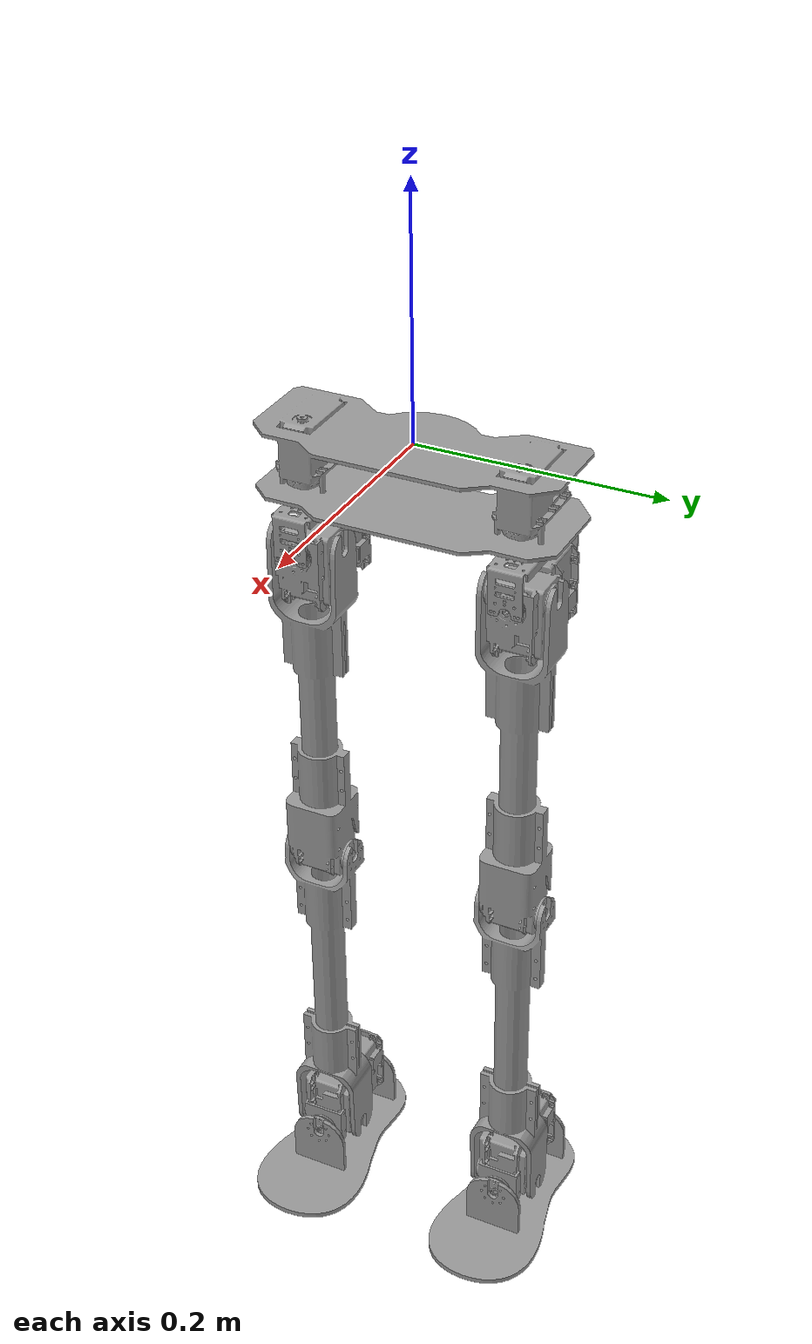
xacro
<?xml version="1.0"?>
<robot name="uthai"
    xmlns:xacro="http://www.ros.org/wiki/xacro">
    <xacro:property name="pi" value="3.141592654"/>
    <!-- Import xacro file -->
    <xacro:include filename="$(find uthai_description)/urdf/materials.xacro" />
    <xacro:include filename="$(find uthai_description)/urdf/uthai.visuals.xacro" />
    <xacro:include filename="$(find uthai_description)/urdf/uthai.inertia.xacro" />
    <xacro:include filename="$(find uthai_description)/urdf/uthai.transmissions.xacro" />
    <xacro:include filename="$(find uthai_description)/urdf/uthai.right_leg.xacro" />
    <xacro:include filename="$(find uthai_description)/urdf/uthai.left_leg.xacro" />
    <xacro:include filename="$(find uthai_description)/urdf/uthai.gazebo.xacro" />
    <!-- Used for fixing robot -->
    <link name="base_link"></link>
    <joint name="base_fixed" type="fixed">
        <origin xyz="0 0 0" rpy="0 0 0"/>
        <parent link="base_link"/>
        <child link="base_footprint"/>
    </joint>
    <!-- base_link -->
    <link name="base_footprint">
        <visual>
            <xacro:insert_mesh_base_link />
        </visual>
        <collision>
            <xacro:insert_mesh_base_link />
        </collision>
        <inertial>
            <xacro:insert_inertia_base_link />
        </inertial>
    </link>
    <!-- imu joint -->
    <joint name="imu_fixed" type="fixed">
        <origin xyz="0.0 0 0.45" rpy="0 0 0"/>
        <parent link="base_footprint"/>
        <child link="imu_link"/>
    </joint>
    <link name="imu_link"></link>
    <!-- leg link -->
    <xacro:uthai_right_leg parent="base_footprint" dxl_effort="10000" dxl_speed="3"/>
    <xacro:uthai_left_leg parent="base_footprint" dxl_effort="10000" dxl_speed="3"/>
</robot>

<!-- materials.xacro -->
<robot>
    <material name="black">
        <color rgba="0.0 0.0 0.0 1.0"/>
    </material>
    <material name="blue">
        <color rgba="0.0 0.0 0.8 1.0"/>
    </material>
    <material name="green">
        <color rgba="0.0 0.8 0.0 1.0"/>
    </material>
    <material name="grey">
        <color rgba="0.6 0.6 0.6 1.0"/>
    </material>
    <material name="orange">
        <color rgba="${255/255} ${108/255} ${10/255} 1.0"/>
    </material>
    <material name="brown">
        <color rgba="${222/255} ${207/255} ${195/255} 1.0"/>
    </material>
    <material name="red">
        <color rgba="0.8 0.0 0.0 1.0"/>
    </material>
    <material name="white">
        <color rgba="1.0 1.0 1.0 1.0"/>
    </material>
</robot>

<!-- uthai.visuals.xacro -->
<robot
    xmlns:xacro="http://www.ros.org/wiki/xacro">
    <!-- body link -->
    <xacro:macro name="insert_mesh_base_link">
        <origin xyz="0 0 0" rpy="0 0 0" />
        <geometry>
            <mesh filename="package://uthai_description/meshes/base.STL" scale="1 1 1" />
        </geometry>
        <material name="grey"/>
    </xacro:macro>
    <!-- right hip yaw link -->
    <xacro:macro name="insert_mesh_r_hip_yaw_link">
        <origin xyz="0 0 0" rpy="0 0 0" />
        <geometry>
            <mesh filename="package://uthai_description/meshes/r_hip_yaw.STL" scale="1 1 1" />
        </geometry>
        <material name="grey"/>
    </xacro:macro>
    <!-- right hip roll link -->
    <xacro:macro name="insert_mesh_r_hip_roll_link">
        <origin xyz="0 0 0" rpy="0 0 0" />
        <geometry>
            <mesh filename="package://uthai_description/meshes/r_hip_roll.STL" scale="1 1 1" />
        </geometry>
        <material name="grey"/>
    </xacro:macro>
    <!-- right hip pitch link -->
    <xacro:macro name="insert_mesh_r_hip_pitch_link">
        <origin xyz="0 0 0" rpy="0 0 0" />
        <geometry>
            <mesh filename="package://uthai_description/meshes/r_hip_pitch.STL" scale="1 1 1" />
        </geometry>
        <material name="grey"/>
    </xacro:macro>
    <!-- right knee link -->
    <xacro:macro name="insert_mesh_r_knee_pitch_link">
        <origin xyz="0 0 0" rpy="0 0 0" />
        <geometry>
            <mesh filename="package://uthai_description/meshes/r_knee_pitch.STL" scale="1 1 1" />
        </geometry>
        <material name="grey"/>
    </xacro:macro>
    <!-- right ankle pitch link -->
    <xacro:macro name="insert_mesh_r_ankle_pitch_link">
        <origin xyz="0 0 0" rpy="0 0 0" />
        <geometry>
            <mesh filename="package://uthai_description/meshes/r_ankle_pitch.STL" scale="1 1 1" />
        </geometry>
        <material name="grey"/>
    </xacro:macro>
    <!-- right ankle roll link -->
    <xacro:macro name="insert_mesh_r_ankle_roll_link">
        <origin xyz="0 0 0" rpy="0 0 0" />
        <geometry>
            <mesh filename="package://uthai_description/meshes/r_ankle_roll.STL" scale="1 1 1" />
        </geometry>
        <material name="grey"/>
    </xacro:macro>
    <!-- left hip yaw link -->
    <xacro:macro name="insert_mesh_l_hip_yaw_link">
        <origin xyz="0 0 0" rpy="0 0 0" />
        <geometry>
            <mesh filename="package://uthai_description/meshes/l_hip_yaw.STL" scale="1 1 1" />
        </geometry>
        <material name="grey"/>
    </xacro:macro>
    <!-- left hip roll link -->
    <xacro:macro name="insert_mesh_l_hip_roll_link">
        <origin xyz="0 0 0" rpy="0 0 0" />
        <geometry>
            <mesh filename="package://uthai_description/meshes/l_hip_roll.STL" scale="1 1 1" />
        </geometry>
        <material name="grey"/>
    </xacro:macro>
    <!-- left hip pitch link -->
    <xacro:macro name="insert_mesh_l_hip_pitch_link">
        <origin xyz="0 0 0" rpy="0 0 0" />
        <geometry>
            <mesh filename="package://uthai_description/meshes/l_hip_pitch.STL" scale="1 1 1" />
        </geometry>
        <material name="grey"/>
    </xacro:macro>
    <!-- left knee pitch link -->
    <xacro:macro name="insert_mesh_l_knee_pitch_link">
        <origin xyz="0 0 0" rpy="0 0 0" />
        <geometry>
            <mesh filename="package://uthai_description/meshes/l_knee_pitch.STL" scale="1 1 1" />
        </geometry>
        <material name="grey"/>
    </xacro:macro>
    <!-- left ankle pitch link -->
    <xacro:macro name="insert_mesh_l_ankle_pitch_link">
        <origin xyz="0 0 0" rpy="0 0 0" />
        <geometry>
            <mesh filename="package://uthai_description/meshes/l_ankle_pitch.STL" scale="1 1 1" />
        </geometry>
        <material name="grey"/>
    </xacro:macro>
    <!-- left ankle roll link -->
    <xacro:macro name="insert_mesh_l_ankle_roll_link">
        <origin xyz="0 0 0" rpy="0 0 0" />
        <geometry>
            <mesh filename="package://uthai_description/meshes/l_ankle_roll.STL" scale="1 1 1" />
        </geometry>
        <material name="grey"/>
    </xacro:macro>
</robot>

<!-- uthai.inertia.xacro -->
<robot
    xmlns:xacro="http://www.ros.org/wiki/xacro">
    <!-- body link -->
    <xacro:macro name="insert_inertia_base_link">
        <origin xyz="-0.00856879 0.00000000 -0.02356598"/>
        <mass value="0.664564"/>
        <inertia ixx="0.00504324" ixy="-0.00000002" ixz="-0.00000358" iyy="0.00051942" iyz="0.00000000" izz="0.00510248" />
    </xacro:macro>
    <!-- right hip yaw link -->
    <xacro:macro name="insert_inertia_r_hip_yaw_link">
        <origin xyz="0.00000000 -0.01999 -0.00735017" />
        <mass value="0.090718"/>
        <inertia ixx="0.00014114" ixy="0.00000000" ixz="0.00000000" iyy="0.00002016" iyz="0.00000000" izz="0.00014272" />
    </xacro:macro>
    <!-- right hip roll link -->
    <xacro:macro name="insert_inertia_r_hip_roll_link">
        <origin xyz="-0.00005878 -0.01433229 -0.01958936" />
        <mass value="0.342"/>
        <inertia ixx="0.00033963" ixy="0.00000054" ixz="-0.00000042" iyy="0.00029059" iyz="0.00001145" izz="0.00015024" />
    </xacro:macro>
    <!-- right hip pitch link -->
    <xacro:macro name="insert_inertia_r_hip_pitch_link">
        <origin xyz="0.21422113 0.0 0.0" />
        <mass value="0.33732478"/>
        <inertia ixx="0.00012533" ixy="0.00000000" ixz="0.00000079" iyy="0.00295762" iyz="0.00000000" izz="0.00291401" />
    </xacro:macro>
    <!-- right knee link -->
    <xacro:macro name="insert_inertia_r_knee_pitch_link">
        <origin xyz="0.16288151 0.00000000 0.00000000" />
        <mass value="0.15100000"/>
        <inertia ixx="0.0000634" ixy="0.0" ixz="0.0" iyy="0.00139615" iyz="0.0" izz="0.00136734" />
    </xacro:macro>
    <!-- right ankle pitch link -->
    <xacro:macro name="insert_inertia_r_ankle_pitch_link">
        <origin xyz="-0.01433229 0.01958936 0.00005878" />
        <mass value="0.342"/>
        <inertia ixx="0.00029059" ixy="-0.00001145" ixz="-0.00000054" iyy="0.00015024" iyz="-0.00000042" izz="0.00033963" />
    </xacro:macro>
    <!-- right ankle roll link -->
    <xacro:macro name="insert_inertia_r_ankle_roll_link">
        <origin xyz="0.03627101 -0.00000116 0.00053793" />
        <mass value="0.155"/>
        <inertia ixx="0.00052206" ixy="0" ixz="0.00001" iyy="0.00047025" iyz="0" izz="0.00009087" />
    </xacro:macro>
    <!-- left hip yaw link -->
    <xacro:macro name="insert_inertia_l_hip_yaw_link">
        <origin xyz="0 0.01999 -0.00735017" />
        <mass value="0.090718"/>
        <inertia ixx="0.00014114" ixy="0.0" ixz="0.0" iyy="0.00002016" iyz="0.0" izz="0.00014272" />
    </xacro:macro>
    <!-- left hip roll link -->
    <xacro:macro name="insert_inertia_l_hip_roll_link">
        <origin xyz="-0.00005878 -0.01433229 -0.01958936" />
        <mass value="0.342"/>
        <inertia ixx="0.00033963" ixy="0.00000054" ixz="-0.00000042" iyy="0.00029059" iyz="0.00001145" izz="0.00015024" />
    </xacro:macro>
    <!-- left hip pitch link -->
    <xacro:macro name="insert_inertia_l_hip_pitch_link">
        <origin xyz="0.21422113 0.00000000 0.00000000" />
        <mass value="0.33732478"/>
        <inertia ixx="0.00012533" ixy="0.00000000" ixz="0.00000079" iyy="0.00295762" iyz="0.00000000" izz="0.00291401" />
    </xacro:macro>
    <!-- left knee link -->
    <xacro:macro name="insert_inertia_l_knee_pitch_link">
        <origin xyz="0.16288151 0.00000000 0.00000000" />
        <mass value="0.15100000"/>
        <inertia ixx="0.0000634" ixy="0.0" ixz="0.0" iyy="0.00139615" iyz="0.0" izz="0.00136734" />
    </xacro:macro>
    <!-- left ankle pitch link -->
    <xacro:macro name="insert_inertia_l_ankle_pitch_link">
        <origin xyz="-0.01433229 0.01958936 0.00005878" />
        <mass value="0.34200000"/>
        <inertia ixx="0.00029059" ixy="-0.00001145" ixz="-0.00000054" iyy="0.00015024" iyz="-0.00000042" izz="0.00033963" />
    </xacro:macro>
    <!-- left ankle roll link -->
    <xacro:macro name="insert_inertia_l_ankle_roll_link">
        <origin xyz="0.03627101 -0.00000116 0.00053793" />
        <mass value="0.155"/>
        <inertia ixx="0.00052206" ixy="0.000000" ixz="0.00001" iyy="0.00047025" iyz="0" izz="0.00009087" />
    </xacro:macro>
</robot>

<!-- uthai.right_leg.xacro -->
<robot
    xmlns:xacro="http://www.ros.org/wiki/xacro">
    <!-- right leg -->
    <xacro:macro name="uthai_right_leg" params="parent dxl_effort dxl_speed">
        <!-- right hip yaw joint -->
        <joint name="r_hip_yaw_joint" type="revolute">
            <axis xyz="0 0 1" />
            <origin xyz="0.0 -0.09 -0.068" rpy="0 0 ${-pi/2}"/>
            <parent link="${parent}"/>
            <child link="r_hip_yaw_link"/>
            <limit effort="${dxl_effort}" lower="${-pi*0.9}" upper="${pi*0.9}" velocity="${dxl_speed}"/>
            <dynamics damping="0.1" friction="0.0"/>
        </joint>
        <xacro:insert_transmission name="r_hip_yaw_joint"/>
        <!-- right hip yaw link -->
        <link name="r_hip_yaw_link">
            <visual>
                <xacro:insert_mesh_r_hip_yaw_link />
            </visual>
            <collision>
                <xacro:insert_mesh_r_hip_yaw_link />
            </collision>
            <inertial>
                <xacro:insert_inertia_r_hip_yaw_link />
            </inertial>
        </link>
        <!-- right hip roll joint-->
        <joint name="r_hip_roll_joint" type="revolute">
            <axis xyz="0 0 1" />
            <origin xyz="0 0 -0.036" rpy="${pi/2} 0 ${pi}"/>
            <parent link="r_hip_yaw_link"/>
            <child link="r_hip_roll_link"/>
            <limit effort="${dxl_effort}" lower="${-pi*0.9}" upper="${pi*0.9}" velocity="${dxl_speed}"/>
            <dynamics damping="0.1" friction="0.0"/>
        </joint>
        <xacro:insert_transmission name="r_hip_roll_joint"/>
        <!-- right hip roll link -->
        <link name="r_hip_roll_link">
            <visual>
                <xacro:insert_mesh_r_hip_roll_link />
            </visual>
            <collision>
                <xacro:insert_mesh_r_hip_roll_link />
            </collision>
            <inertial>
                <xacro:insert_inertia_r_hip_roll_link />
            </inertial>
        </link>
        <!-- right hip pitch joint -->
        <joint name="r_hip_pitch_joint" type="revolute">
            <axis xyz="0 0 1" />
            <origin xyz="0 0 0" rpy="${-pi/2} 0 ${-pi/2}"/>
            <parent link="r_hip_roll_link"/>
            <child link="r_hip_pitch_link"/>
            <limit effort="${dxl_effort}" lower="${-pi*0.9}" upper="${pi*0.9}" velocity="${dxl_speed}"/>
            <dynamics damping="0.1" friction="0.0"/>
        </joint>
        <xacro:insert_transmission name="r_hip_pitch_joint"/>
        <!-- right hip pitch link -->
        <link name="r_hip_pitch_link">
            <visual>
                <xacro:insert_mesh_r_hip_pitch_link />
            </visual>
            <collision>
                <xacro:insert_mesh_r_hip_pitch_link />
            </collision>
            <inertial>
                <xacro:insert_inertia_r_hip_pitch_link />
            </inertial>
        </link>
        <!-- right knee pitch joint -->
        <joint name="r_knee_pitch_joint" type="revolute">
            <axis xyz="0 0 1" />
            <origin xyz="0.3 0 0" rpy="0 0 0"/>
            <parent link="r_hip_pitch_link"/>
            <child link="r_knee_pitch_link"/>
            <limit effort="${dxl_effort}" lower="${-pi*0.9}" upper="${pi*0.9}" velocity="${dxl_speed}"/>
            <dynamics damping="0.1" friction="0.0"/>
        </joint>
        <xacro:insert_transmission name="r_knee_pitch_joint"/>
        <!-- right knee pitch link -->
        <link name="r_knee_pitch_link">
            <visual>
                <xacro:insert_mesh_r_knee_pitch_link />
            </visual>
            <collision>
                <xacro:insert_mesh_r_knee_pitch_link />
            </collision>
            <inertial>
                <xacro:insert_inertia_r_knee_pitch_link />
            </inertial>
        </link>
        <!-- right ankle pitch joint -->
        <joint name="r_ankle_pitch_joint" type="revolute">
            <axis xyz="0 0 1" />
            <origin xyz="0.315 0 0" rpy="0 0 0"/>
            <parent link="r_knee_pitch_link"/>
            <child link="r_ankle_pitch_link"/>
            <limit effort="${dxl_effort}" lower="${-pi*0.9}" upper="${pi*0.9}" velocity="${dxl_speed}"/>
            <dynamics damping="0.1" friction="0.0"/>
        </joint>
        <xacro:insert_transmission name="r_ankle_pitch_joint"/>
        <!-- right ankle pitch link -->
        <link name="r_ankle_pitch_link">
            <visual>
                <xacro:insert_mesh_r_ankle_pitch_link />
            </visual>
            <collision>
                <xacro:insert_mesh_r_ankle_pitch_link />
            </collision>
            <inertial>
                <xacro:insert_inertia_r_ankle_pitch_link />
            </inertial>
        </link>
        <!-- right ankle roll pitch -->
        <joint name="r_ankle_roll_joint" type="revolute">
            <axis xyz="0 0 1" />
            <origin xyz="0 0 0" rpy="${pi/2} 0 0"/>
            <parent link="r_ankle_pitch_link"/>
            <child link="r_ankle_roll_link"/>
            <limit effort="${dxl_effort}" lower="${-pi*0.9}" upper="${pi*0.9}" velocity="${dxl_speed}"/>
            <dynamics damping="0.1" friction="0.0"/>
        </joint>
        <xacro:insert_transmission name="r_ankle_roll_joint"/>
        <!-- right ankle roll link -->
        <link name="r_ankle_roll_link">
            <visual>
                <xacro:insert_mesh_r_ankle_roll_link />
            </visual>
            <collision>
                <xacro:insert_mesh_r_ankle_roll_link />
            </collision>
            <inertial>
                <xacro:insert_inertia_r_ankle_roll_link />
            </inertial>
        </link>
        <!-- right ft fixed joint -->
        <joint name="r_ft_fixed" type="fixed">
            <origin xyz="0.045 0.0 0.0" rpy="0 ${-pi/2} 0"/>
            <parent link="r_ankle_roll_link"/>
            <child link="r_foot_ft_link"/>
        </joint>
        <!-- right foot ft link -->
        <link name="r_foot_ft_link"></link>
    </xacro:macro>
</robot>

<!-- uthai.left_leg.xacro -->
<robot
    xmlns:xacro="http://www.ros.org/wiki/xacro">
    <!-- left leg -->
    <xacro:macro name="uthai_left_leg" params="parent dxl_effort dxl_speed">
        <!-- left hip yaw joint -->
        <joint name="l_hip_yaw_joint" type="revolute">
            <axis xyz="0 0 1" />
            <origin xyz="0.0 0.09 -0.068" rpy="0 0 ${pi/2}"/>
            <parent link="${parent}"/>
            <child link="l_hip_yaw_link"/>
            <limit effort="${dxl_effort}" lower="${-pi*0.9}" upper="${pi*0.9}" velocity="${dxl_speed}"/>
            <dynamics damping="0.1" friction="0.0"/>
        </joint>
        <xacro:insert_transmission name="l_hip_yaw_joint"/>
        <!-- left hip yaw link -->
        <link name="l_hip_yaw_link">
            <visual>
                <xacro:insert_mesh_l_hip_yaw_link />
            </visual>
            <collision>
                <xacro:insert_mesh_l_hip_yaw_link />
            </collision>
            <inertial>
                <xacro:insert_inertia_l_hip_yaw_link />
            </inertial>
        </link>
        <!-- left hip roll joint-->
        <joint name="l_hip_roll_joint" type="revolute">
            <axis xyz="0 0 1" />
            <origin xyz="0 0 -0.036" rpy="${pi/2} 0 0"/>
            <parent link="l_hip_yaw_link"/>
            <child link="l_hip_roll_link"/>
            <limit effort="${dxl_effort}" lower="${-pi*0.9}" upper="${pi*0.9}" velocity="${dxl_speed}"/>
            <dynamics damping="0.1" friction="0.0"/>
        </joint>
        <xacro:insert_transmission name="l_hip_roll_joint"/>
        <!-- left hip roll link -->
        <link name="l_hip_roll_link">
            <visual>
                <xacro:insert_mesh_l_hip_roll_link />
            </visual>
            <collision>
                <xacro:insert_mesh_l_hip_roll_link />
            </collision>
            <inertial>
                <xacro:insert_inertia_l_hip_roll_link />
            </inertial>
        </link>
        <!-- left hip pitch joint -->
        <joint name="l_hip_pitch_joint" type="revolute">
            <axis xyz="0 0 1" />
            <origin xyz="0 0 0" rpy="${-pi/2} 0 ${-pi/2}"/>
            <parent link="l_hip_roll_link"/>
            <child link="l_hip_pitch_link"/>
            <limit effort="${dxl_effort}" lower="${-pi*0.9}" upper="${pi*0.9}" velocity="${dxl_speed}"/>
            <dynamics damping="0.1" friction="0.0"/>
        </joint>
        <xacro:insert_transmission name="l_hip_pitch_joint"/>
        <!-- left hip pitch link -->
        <link name="l_hip_pitch_link">
            <visual>
                <xacro:insert_mesh_l_hip_pitch_link />
            </visual>
            <collision>
                <xacro:insert_mesh_l_hip_pitch_link />
            </collision>
            <inertial>
                <xacro:insert_inertia_l_hip_pitch_link />
            </inertial>
        </link>
        <!-- left knee pitch joint -->
        <joint name="l_knee_pitch_joint" type="revolute">
            <axis xyz="0 0 1" />
            <origin xyz="0.3 0 0" rpy="0 0 0"/>
            <parent link="l_hip_pitch_link"/>
            <child link="l_knee_pitch_link"/>
            <limit effort="${dxl_effort}" lower="${-pi*0.9}" upper="${pi*0.9}" velocity="${dxl_speed}"/>
            <dynamics damping="0.1" friction="0.0"/>
        </joint>
        <xacro:insert_transmission name="l_knee_pitch_joint"/>
        <!-- left knee pitch link -->
        <link name="l_knee_pitch_link">
            <visual>
                <xacro:insert_mesh_l_knee_pitch_link />
            </visual>
            <collision>
                <xacro:insert_mesh_l_knee_pitch_link />
            </collision>
            <inertial>
                <xacro:insert_inertia_l_knee_pitch_link />
            </inertial>
        </link>
        <!-- left ankle pitch joint -->
        <joint name="l_ankle_pitch_joint" type="revolute">
            <axis xyz="0 0 1" />
            <origin xyz="0.315 0 0" rpy="0 0 0"/>
            <parent link="l_knee_pitch_link"/>
            <child link="l_ankle_pitch_link"/>
            <limit effort="${dxl_effort}" lower="${-pi*0.9}" upper="${pi*0.9}" velocity="${dxl_speed}"/>
            <dynamics damping="0.1" friction="0.0"/>
        </joint>
        <xacro:insert_transmission name="l_ankle_pitch_joint"/>
        <!-- left ankle pitch link -->
        <link name="l_ankle_pitch_link">
            <visual>
                <xacro:insert_mesh_l_ankle_pitch_link />
            </visual>
            <collision>
                <xacro:insert_mesh_l_ankle_pitch_link />
            </collision>
            <inertial>
                <xacro:insert_inertia_l_ankle_pitch_link />
            </inertial>
        </link>
        <!-- left ankle roll pitch -->
        <joint name="l_ankle_roll_joint" type="revolute">
            <axis xyz="0 0 1" />
            <origin xyz="0 0 0" rpy="${pi/2} 0 0"/>
            <parent link="l_ankle_pitch_link"/>
            <child link="l_ankle_roll_link"/>
            <limit effort="${dxl_effort}" lower="${-pi*0.9}" upper="${pi*0.9}" velocity="${dxl_speed}"/>
            <dynamics damping="0.1" friction="0.0"/>
        </joint>
        <xacro:insert_transmission name="l_ankle_roll_joint"/>
        <!-- left ankle roll link -->
        <link name="l_ankle_roll_link">
            <visual>
                <xacro:insert_mesh_l_ankle_roll_link />
            </visual>
            <collision>
                <xacro:insert_mesh_l_ankle_roll_link />
            </collision>
            <inertial>
                <xacro:insert_inertia_l_ankle_roll_link />
            </inertial>
        </link>
        <!-- left ft fixed joint -->
        <joint name="l_ft_fixed" type="fixed">
            <origin xyz="0.045 0.0 0.0" rpy="0 ${-pi/2} 0"/>
            <parent link="l_ankle_roll_link"/>
            <child link="l_foot_ft_link"/>
        </joint>
        <!-- left foot ft link -->
        <link name="l_foot_ft_link"></link>
    </xacro:macro>
</robot>
